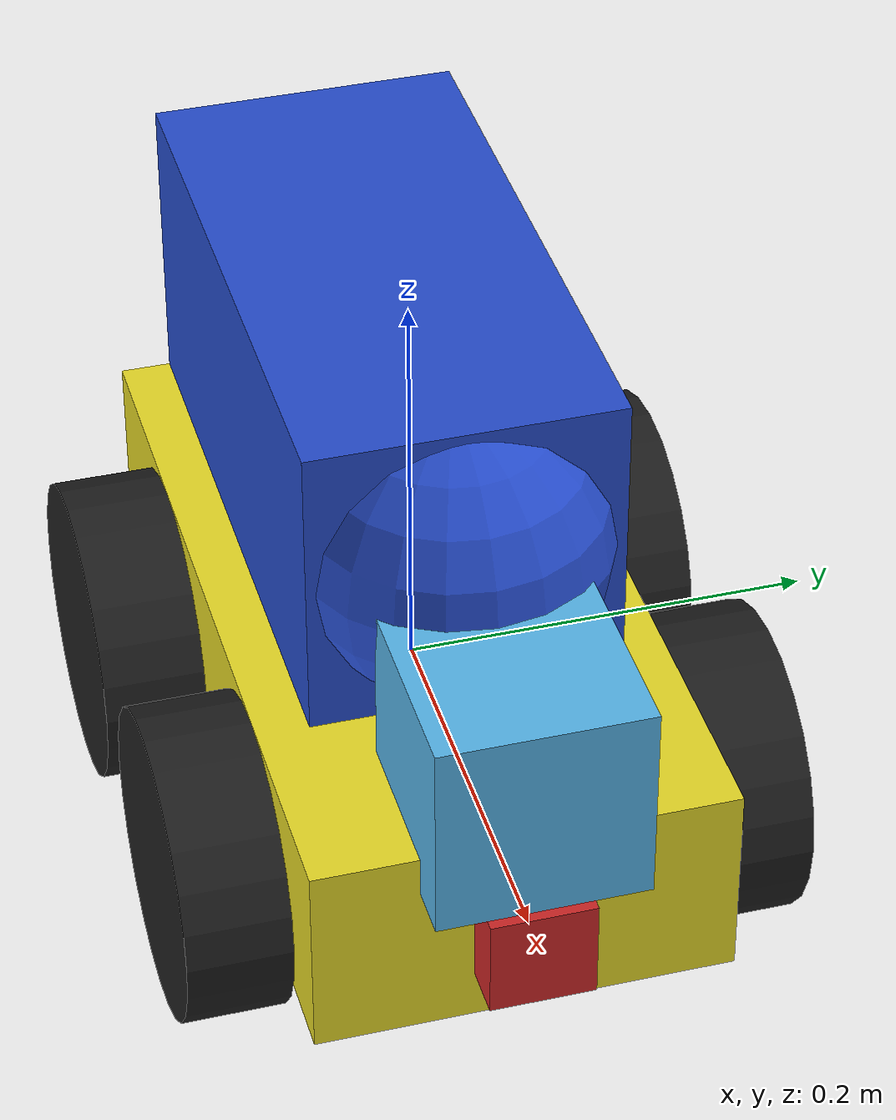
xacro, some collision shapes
<?xml version="1.0"?>

<robot name="my_robot" xmlns:xacro="http://www.ros.org/wiki/xacro">
  <xacro:include filename="$(find my_robot)/urdf/my_robot.gazebo" />

  <!--  VARIABLES -->

  <xacro:property name="chassis_length" value="0.4" />
  <xacro:property name="chassis_width" value="0.2" />
  <xacro:property name="chassis_height" value="0.1" />

  <xacro:property name="wheel_length" value="0.05" />
  <xacro:property name="wheel_radius" value="${chassis_height * 0.75}" />
  <xacro:property name="wheel_mass" value=".25" />
  <xacro:property name="wheel_x_offset" value="0.09" />
  <xacro:property name="wheel_y_offset" value="${(chassis_width/2) + (wheel_length/2)}" />
  <xacro:property name="wheel_z_offset" value="-${chassis_height * 0.25}" />
  <xacro:property name="wheel_rpy" value="0 1.5707 1.5707" />
  <xacro:property name="wheel_front_joint_xyz" value="0 0 0" />
  <xacro:property name="wheel_inertia" value="0.1" />
  <xacro:property name="wheel_kp" value="1000000.0" />
  <xacro:property name="wheel_kd" value="100.0" />
  <xacro:property name="wheel_mu1" value="1" />
  <xacro:property name="wheel_mu2" value="1" />
  <xacro:property name="wheel_slip1" value="0.5" />
  <xacro:property name="wheel_slip2" value="0" />

  <!-- ROOT LINK and ROBOT CHASSIS -->
  <link name="robot_footprint"></link>

  <joint name="robot_footprint_joint" type="fixed">
    <origin xyz="0 0 0" rpy="0 0 0" />
    <parent link="robot_footprint" />
    <child link="chassis" />
  </joint>

  <link name="chassis">
    <pose>0 0 0.1 0 0 0</pose>

    <inertial>
      <mass value="15.0" />
      <origin xyz="0.0 0 0" rpy="0 0 0" />
      <inertia
        ixx="0.1" ixy="0" ixz="0"
        iyy="0.1" iyz="0"
        izz="0.1"
      />
    </inertial>

    <collision name="collision">
      <origin xyz="0 0 0" rpy="0 0 0" />
      <geometry>
        <box size="0.4 0.2 0.1" />
      </geometry>
    </collision>

    <visual name="chassis_visual">
      <origin xyz="0 0 0" rpy="0 0 0" />
      <geometry>
        <box size="${chassis_length} ${chassis_width} ${chassis_height}" />
      </geometry>
    </visual>
  </link>

  <joint name="body_joint" type="fixed">
    <origin xyz="-0.05 0 ${chassis_height - wheel_z_offset}" rpy=" 0 0 0" />
    <parent link="chassis" />
    <child link="body" />
  </joint>

  <link name="body">
    <collision name='body_collision'>
      <origin xyz="0 0 0" rpy=" 0 0 0" />
      <geometry>
        <box size="${chassis_length *0.75} ${chassis_width*0.75} ${chassis_height*1.5}" />
      </geometry>
    </collision>

    <visual name='body_visual'>
      <origin xyz="0 0 0" rpy=" 0 0 0" />
      <geometry>
        <box size="${chassis_length *0.75} ${chassis_width*0.75} ${chassis_height*1.5}" />
      </geometry>
    </visual>
    <inertial>
      <mass value="1.0" />
      <origin xyz="0.0 0 0" rpy="0 0 0" />
      <inertia
        ixx="0.1" ixy="0" ixz="0"
        iyy="0.1" iyz="0"
        izz="0.1"
      />
    </inertial>
  </link>

  <joint name="body_fairing_joint" type="fixed">
    <origin xyz="0.075 0  ${chassis_height - wheel_z_offset}" rpy=" 0 0 0" />
    <parent link="chassis" />
    <child link="body_fairing" />
  </joint>

  <link name="body_fairing">
    <collision name='body_fairing_collision'>
      <origin xyz="0 0 0" rpy="0 0 0" />
      <geometry>
        <sphere radius="${chassis_width*0.5*0.75}" />
      </geometry>
    </collision>
    <visual name='body_fairing_visual'>
      <origin xyz="0 0 0" rpy="0 0 0" />
      <geometry>
        <sphere radius="${chassis_width*0.5*0.75}" />
      </geometry>
    </visual>
    <inertial>
      <mass value="0.25" />
      <origin xyz="0.0 0 0" rpy="0 0 0" />
      <inertia
        ixx="0.1" ixy="0" ixz="0"
        iyy="0.1" iyz="0"
        izz="0.1"
      />
    </inertial>
  </link>

  <!--  WHEELS  -->
  <joint type="continuous" name="wheel_left_front_joint">
    <origin xyz="${wheel_x_offset} ${wheel_y_offset} ${wheel_z_offset}" rpy="0 0 0"/>
    <child link="wheel_left_front"/>
    <parent link="chassis"/>
    <axis xyz="0 1 0" />
    <limit effort="10000" velocity="1000"/>
    <dynamics damping="1.0" friction="1.0"/>
  </joint>
  <joint type="continuous" name="wheel_left_rear_joint">
    <origin xyz="-${wheel_x_offset} ${wheel_y_offset} ${wheel_z_offset}" rpy="0 0 0"/>
    <child link="wheel_left_rear"/>
    <parent link="chassis"/>
    <axis xyz="0 1 0" />
    <limit effort="10000" velocity="1000"/>
    <dynamics damping="1.0" friction="1.0"/>
  </joint>
  <joint type="continuous" name="wheel_right_front_joint">
    <origin xyz="${wheel_x_offset} -${wheel_y_offset} ${wheel_z_offset}" rpy="0 0 0"/>
    <child link="wheel_right_front"/>
    <parent link="chassis"/>
    <axis xyz="0 1 0" />
    <limit effort="10000" velocity="1000"/>
    <dynamics damping="1.0" friction="1.0"/>
  </joint>
  <joint type="continuous" name="wheel_right_rear_joint">
    <origin xyz="-${wheel_x_offset} -${wheel_y_offset} ${wheel_z_offset}" rpy="0 0 0"/>
    <child link="wheel_right_rear"/>
    <parent link="chassis"/>
    <axis xyz="0 1 0" />
    <limit effort="10000" velocity="1000"/>
    <dynamics damping="1.0" friction="1.0"/>
  </joint>

  <link name="wheel_left_front">
    <visual name="wheel_left_front_visual">
      <origin xyz="0.0 0 0" rpy="${wheel_rpy}" />
      <geometry>
        <cylinder radius="${wheel_radius}" length="${wheel_length}" />
      </geometry>
    </visual>
    <collision name="wheel_left_front_collision">
      <origin xyz="0.0 0 0" rpy="${wheel_rpy}" />
      <geometry>
        <cylinder radius="${wheel_radius}" length="${wheel_length}" />
      </geometry>
      <surface>
        <friction>
          <fdir1>1 0 0</fdir1>
          <kp>${wheel_kp}</kp> <!-- kp and kd for rubber -->
          <kd>${wheel_kd}</kd>
          <mu>${wheel_mu1}</mu>
          <mu2>${wheel_mu2}</mu2>
          <slip1>${wheel_slip1}</slip1>
          <slip2>${wheel_slip2}</slip2>
        </friction>
      </surface>
    </collision>
    <inertial>
      <mass value="${wheel_mass}" />
      <origin xyz="0.0 0 0" rpy="${wheel_rpy}" />
      <inertia
        ixx="${wheel_inertia}" ixy="0" ixz="0"
        iyy="${wheel_inertia}" iyz="0"
        izz="${wheel_inertia}"
      />
    </inertial>
  </link>
  <link name="wheel_left_rear">
    <visual name="wheel_left_rear_visual">
      <origin xyz="0.0 0 0" rpy="${wheel_rpy}" />
      <geometry>
        <cylinder radius="${wheel_radius}" length="${wheel_length}" />
      </geometry>
    </visual>

    <collision name="wheel_left_rear_collision">
      <origin xyz="0.0 0 0" rpy="${wheel_rpy}" />
      <geometry>
        <cylinder radius="${wheel_radius}" length="${wheel_length}" />
      </geometry>
      <surface>
        <friction>
          <fdir1>1 0 0</fdir1>
          <kp>${wheel_kp}</kp> <!-- kp and kd for rubber -->
          <kd>${wheel_kd}</kd>
          <mu>${wheel_mu1}</mu>
          <mu2>${wheel_mu2}</mu2>
          <slip1>${wheel_slip1}</slip1>
          <slip2>${wheel_slip2}</slip2>
        </friction>
      </surface>
    </collision>

    <inertial>
      <mass value="${wheel_mass}" />
      <origin xyz="0.0 0 0" rpy="${wheel_rpy}" />
      <inertia
        ixx="${wheel_inertia}" ixy="0" ixz="0"
        iyy="${wheel_inertia}" iyz="0"
        izz="${wheel_inertia}"
      />
    </inertial>
  </link>
  <link name="wheel_right_front">
    <visual name="wheel_right_front_visual">
      <origin xyz="0.0 0 0" rpy="${wheel_rpy}" />
      <geometry>
        <cylinder radius="${wheel_radius}" length="${wheel_length}" />
      </geometry>
    </visual>

    <collision name="wheel_right_front_collision">
      <origin xyz="0.0 0 0" rpy="${wheel_rpy}" />
      <geometry>
        <cylinder radius="${wheel_radius}" length="${wheel_length}" />
      </geometry>
      <surface>
        <friction>
          <fdir1>1 0 0</fdir1>
          <kp>${wheel_kp}</kp> <!-- kp and kd for rubber -->
          <kd>${wheel_kd}</kd>
          <mu>${wheel_mu1}</mu>
          <mu2>${wheel_mu2}</mu2>
          <slip1>${wheel_slip1}</slip1>
          <slip2>${wheel_slip2}</slip2>
        </friction>
      </surface>
    </collision>

    <inertial>
      <mass value="${wheel_mass}" />
      <origin xyz="0.0 0 0" rpy="${wheel_rpy}" />
      <inertia
        ixx="${wheel_inertia}" ixy="0" ixz="0"
        iyy="${wheel_inertia}" iyz="0"
        izz="${wheel_inertia}"
      />
    </inertial>
  </link>
  <link name="wheel_right_rear">
    <visual name="wheel_right_rear_visual">
      <origin xyz="0.0 0 0" rpy="${wheel_rpy}" />
      <geometry>
        <cylinder radius="${wheel_radius}" length="${wheel_length}" />
      </geometry>
    </visual>

    <collision name="wheel_right_rear_collision">
      <origin xyz="0.0 0 0" rpy="${wheel_rpy}" />
      <geometry>
        <cylinder radius="${wheel_radius}" length="${wheel_length}" />
      </geometry>
      <surface>
        <friction>
          <fdir1>1 0 0</fdir1>
          <kp>${wheel_kp}</kp> <!-- kp and kd for rubber -->
          <kd>${wheel_kd}</kd>
          <mu>${wheel_mu1}</mu>
          <mu2>${wheel_mu2}</mu2>
          <slip1>${wheel_slip1}</slip1>
          <slip2>${wheel_slip2}</slip2>
        </friction>
      </surface>
    </collision>

    <inertial>
      <mass value="${wheel_mass}" />
      <origin xyz="0.0 0 0" rpy="${wheel_rpy}" />
      <inertia
        ixx="${wheel_inertia}" ixy="0" ixz="0"
        iyy="${wheel_inertia}" iyz="0"
        izz="${wheel_inertia}"
      />
    </inertial>
  </link>

  <!-- SENSORS  -->
  <joint type="fixed" name="camera_joint">
    <origin xyz=".2 0 0" rpy="0 0 0" />
    <child link="camera" />
    <parent link="chassis" />
    <axis xyz="0 1 0" />
  </joint>
  <link name="camera">
    <visual name="camera_visual">
      <origin xyz="0 0 0" rpy="0 0 0"/>
      <geometry>
        <box size="0.05 0.05 0.05" />
      </geometry>
    </visual>

    <collision name="camera_collision">
      <origin xyz="0 0 0" rpy="0 0 0" />
      <geometry>
        <box size="0.05 0.05 0.05" />
      </geometry>
    </collision>

    <inertial>
      <mass value="0.1" />
      <origin xyz="0 0 0" rpy="0 0 0" />
      <box_inertia m="0.1" x="0.05" y="0.05" z="0.05" />
      <inertia
        ixx="1e-6" ixy="0" ixz="0"
        iyy="1e-6" iyz="0"
        izz="1e-6"
      />
    </inertial>
  </link>

  <joint type="fixed" name="hokuyo_joint">
    <origin xyz="0.175 0 0.08" rpy="0 0 0" />
    <child link="hokuyo" />
    <parent link="chassis" />
    <axis xyz="0 1 0" />
  </joint>
  <link name="hokuyo">
    <visual name="hokuyo_visual">
      <origin xyz="0 0 0" rpy="0 0 0" />
      <geometry>
        <mesh filename="package://my_robot/meshes/hokuyo.dae" />
      </geometry>
    </visual>

    <collision name="hokuyo_collision">
      <origin xyz="0 0 0" rpy="0 0 0" />
      <geometry>
        <box size="0.1 0.1 0.1" />
      </geometry>
    </collision>

    <inertial>
      <mass value="1e-5" />
      <origin xyz="0 0 0" rpy="0 0 0" />
      <inertia
        ixx="1e-6" ixy="0" ixz="0"
        iyy="1e-6" iyz="0"
        izz="1e-6"
      />
    </inertial>
  </link>

  <!--  COLOURS  -->
  <gazebo reference="chassis">
    <material>Gazebo/Yellow</material>
  </gazebo>
  <gazebo reference="body">
    <material>Gazebo/BlueGlow</material>
  </gazebo>
  <gazebo reference="body_fairing">
    <material>Gazebo/BlueGlow</material>
  </gazebo>
  <gazebo reference="wheel_left_front">
    <material>Gazebo/Black</material>
  </gazebo>
  <gazebo reference="wheel_left_rear">
    <material>Gazebo/Black</material>
  </gazebo>
  <gazebo reference="wheel_right_front">
    <material>Gazebo/Black</material>
  </gazebo>
  <gazebo reference="wheel_right_rear">
    <material>Gazebo/Black</material>
  </gazebo>
  <gazebo reference="camera">
    <material>Gazebo/Red</material>
  </gazebo>
</robot>
